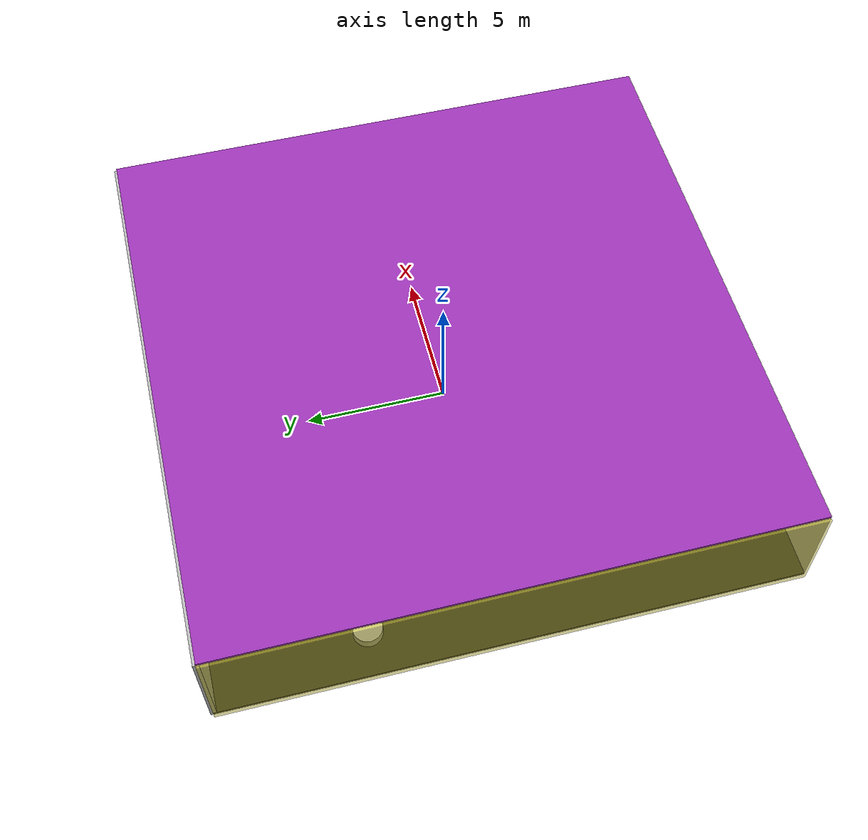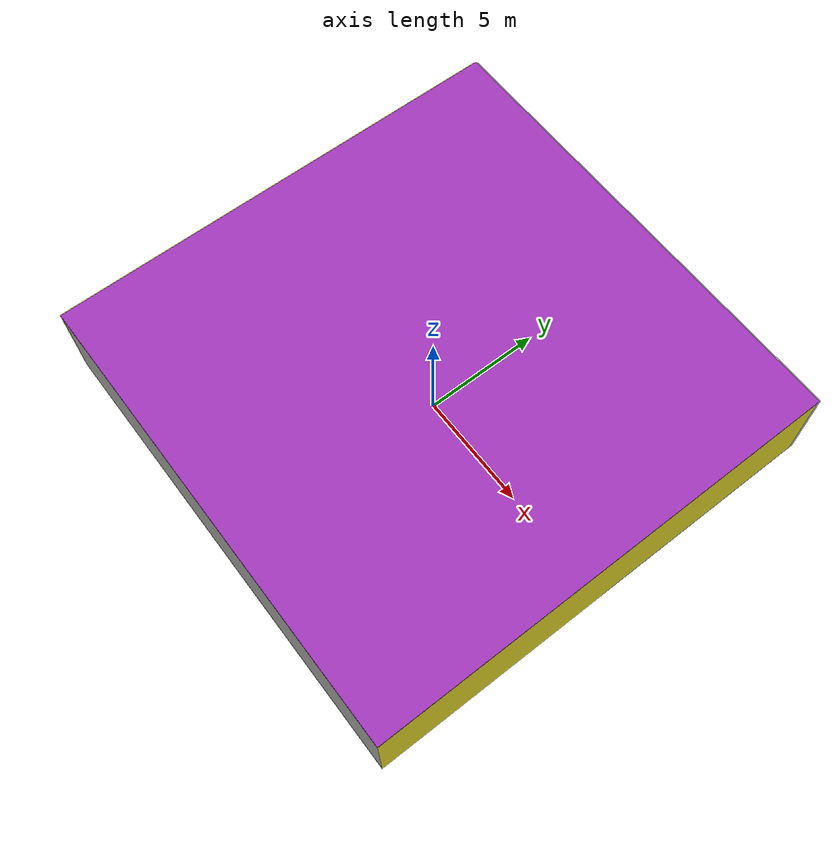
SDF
<sdf version="1.4">
 <world name="default">
  <physics type="ode">
   <max_step_size>0.001</max_step_size>
   <real_time_factor>1</real_time_factor>
   <real_time_update_rate>1000</real_time_update_rate>
   <gravity>0 0 -9.8</gravity>
  </physics>
  <scene><ambient>0.4 0.4 0.4 1</ambient><background>0.7 0.7 0.7 1</background><shadows>1</shadows></scene>
  <model name="Surrounding">
   <static>1</static>
   <link name="Ceiling">
    <collision name="Ceiling_Collision"><geometry><box><size>20 20 0.1</size></box></geometry></collision>
    <visual name="Ceiling_Visual">
     <geometry><box><size>20 20 0.1</size></box></geometry>
     <material>
      <script><uri>file://media/materials/scripts/gazebo.material</uri><name>Gazebo/Purple</name></script>
     </material>
    </visual>
    <pose>0 0 4.05 0 0 0</pose>
   </link>
   <link name="Wall_South">
    <collision name="Wall_South_Collision">
     <geometry><box><size>20 0 4</size></box></geometry>
     <pose>0 0 2 0 -0 0</pose>
    </collision>
    <visual name="Wall_South_Visual">
     <pose>0 0 2 0 -0 0</pose>
     <geometry><box><size>20 0 4</size></box></geometry>
     <material>
      <script><uri>file://media/materials/scripts/gazebo.material</uri><name>Gazebo/CeilingTiled</name></script>
     </material>
    </visual>
    <velocity_decay><linear>0</linear><angular>0</angular></velocity_decay>
    <pose>0 -10 0 0 -0 0</pose>
   </link>
   <link name="Wall_East">
    <collision name="Wall_21_Collision">
     <geometry><box><size>20 0 4</size></box></geometry>
     <pose>0 0 2 0 -0 0</pose>
    </collision>
    <visual name="Wall_21_Visual">
     <pose>0 0 2 0 -0 0</pose>
     <geometry><box><size>20 0 4</size></box></geometry>
     <material>
      <script><uri>file://media/materials/scripts/gazebo.material</uri><name>Gazebo/YellowGlow</name></script>
     </material>
    </visual>
    <velocity_decay><linear>0</linear><angular>0</angular></velocity_decay>
    <pose>10 0 0 0 -0 1.5708</pose>
   </link>
   <link name="Wall_North">
    <collision name="Wall_22_Collision">
     <geometry><box><size>20 0.2 4</size></box></geometry>
     <pose>0 0 2 0 -0 0</pose>
    </collision>
    <visual name="Wall_22_Visual">
     <pose>0 0 2 0 -0 0</pose>
     <geometry><box><size>20 0.2 4</size></box></geometry>
     <material>
      <script><uri>file://media/materials/scripts/gazebo.material</uri><name>Gazebo/JointAnchor</name></script>
     </material>
    </visual>
    <velocity_decay><linear>0</linear><angular>0</angular></velocity_decay>
    <pose>0 10 0 0 -0 0</pose>
   </link>
   <link name="Wall_West">
    <collision name="Wall_23_Collision">
     <geometry><box><size>20 0.2 4</size></box></geometry>
     <pose>0 0 2 0 -0 0</pose>
    </collision>
    <visual name="Wall_23_Visual">
     <pose>0 0 2 0 -0 0</pose>
     <geometry><box><size>20 0.2 4</size></box></geometry>
     <material>
      <script>
       <uri>file://media/materials/scripts/gazebo.material</uri>
       <name>Gazebo/YellowTransparent</name>
      </script>
     </material>
    </visual>
    <velocity_decay><linear>0</linear><angular>0</angular></velocity_decay>
    <pose>-10 0 0 0 0 -1.5708</pose>
   </link>
   <link name="Ground_link">
    <collision name="collision">
     <pose>0 0 .05 0 -0 0</pose>
     <geometry><box><size>20 20 0.1</size></box></geometry>
    </collision>
    <visual name="visual">
     <pose>0 0 .05 0 -0 0</pose>
     <geometry><box><size>20 20 0.1</size></box></geometry>
     <material>
      <script><uri>file://media/materials/scripts/gazebo.material</uri><name>Gazebo/FlatBlack</name></script>
     </material>
    </visual>
   </link>
   <static>1</static>
  </model>
  <spherical_coordinates>
   <surface_model>EARTH_WGS84</surface_model>
   <latitude_deg>0</latitude_deg>
   <longitude_deg>0</longitude_deg>
   <elevation>0</elevation>
   <heading_deg>0</heading_deg>
  </spherical_coordinates>
  <light name="lightball_0" type="diffuse">
   <diffuse>0.8 0.8 0.8 1</diffuse>
   <specular>0.2 0.2 0.2 1</specular>
   <attenuation>
    <range>100</range>
    <constant>0.7</constant>
    <linear>0.01</linear>
    <quadratic>0.001</quadratic>
   </attenuation>
   <direction>-0.5 0.1 -0.9</direction>
   <pose>5.24179677194 9.68957459102 3.84039142176 0 0 0</pose>
  </light>
  <light name="lightball_1" type="diffuse">
   <diffuse>0.8 0.8 0.8 1</diffuse>
   <specular>0.2 0.2 0.2 1</specular>
   <attenuation>
    <range>100</range>
    <constant>0.7</constant>
    <linear>0.01</linear>
    <quadratic>0.001</quadratic>
   </attenuation>
   <direction>-0.5 0.1 -0.9</direction>
   <pose>6.25661490067 3.26236135331 3.61111706352 0 0 0</pose>
  </light>
  <light name="lightball_2" type="diffuse">
   <diffuse>0.8 0.8 0.8 1</diffuse>
   <specular>0.2 0.2 0.2 1</specular>
   <attenuation>
    <range>100</range>
    <constant>0.7</constant>
    <linear>0.01</linear>
    <quadratic>0.001</quadratic>
   </attenuation>
   <direction>-0.5 0.1 -0.9</direction>
   <pose>-1.1549157894 -1.60708555731 1.37902831928 0 0 0</pose>
  </light>
  <light name="lightball_3" type="diffuse">
   <diffuse>0.8 0.8 0.8 1</diffuse>
   <specular>0.2 0.2 0.2 1</specular>
   <attenuation>
    <range>100</range>
    <constant>0.7</constant>
    <linear>0.01</linear>
    <quadratic>0.001</quadratic>
   </attenuation>
   <direction>-0.5 0.1 -0.9</direction>
   <pose>-5.01397449413 5.41537633721 1.66171942621 0 0 0</pose>
  </light>
  <light name="lightball_4" type="diffuse">
   <diffuse>0.8 0.8 0.8 1</diffuse>
   <specular>0.2 0.2 0.2 1</specular>
   <attenuation>
    <range>100</range>
    <constant>0.7</constant>
    <linear>0.01</linear>
    <quadratic>0.001</quadratic>
   </attenuation>
   <direction>-0.5 0.1 -0.9</direction>
   <pose>-4.66726814997 -9.65261182264 2.48706120303 0 0 0</pose>
  </light>
  <light name="lightball_5" type="diffuse">
   <diffuse>0.8 0.8 0.8 1</diffuse>
   <specular>0.2 0.2 0.2 1</specular>
   <attenuation>
    <range>100</range>
    <constant>0.7</constant>
    <linear>0.01</linear>
    <quadratic>0.001</quadratic>
   </attenuation>
   <direction>-0.5 0.1 -0.9</direction>
   <pose>-7.95876379608 7.15551269418 1.86417831462 0 0 0</pose>
  </light>
  <light name="lightball_6" type="diffuse">
   <diffuse>0.8 0.8 0.8 1</diffuse>
   <specular>0.2 0.2 0.2 1</specular>
   <attenuation>
    <range>100</range>
    <constant>0.7</constant>
    <linear>0.01</linear>
    <quadratic>0.001</quadratic>
   </attenuation>
   <direction>-0.5 0.1 -0.9</direction>
   <pose>-5.69178238358 -5.99712260795 1.72371877687 0 0 0</pose>
  </light>
  <light name="lightball_7" type="diffuse">
   <diffuse>0.8 0.8 0.8 1</diffuse>
   <specular>0.2 0.2 0.2 1</specular>
   <attenuation>
    <range>100</range>
    <constant>0.7</constant>
    <linear>0.01</linear>
    <quadratic>0.001</quadratic>
   </attenuation>
   <direction>-0.5 0.1 -0.9</direction>
   <pose>5.069787615 -0.450328949294 2.72522510906 0 0 0</pose>
  </light>
  <light name="lightball_8" type="diffuse">
   <diffuse>0.8 0.8 0.8 1</diffuse>
   <specular>0.2 0.2 0.2 1</specular>
   <attenuation>
    <range>100</range>
    <constant>0.7</constant>
    <linear>0.01</linear>
    <quadratic>0.001</quadratic>
   </attenuation>
   <direction>-0.5 0.1 -0.9</direction>
   <pose>8.1290091041 5.97943128751 3.77145385262 0 0 0</pose>
  </light>
  <light name="lightball_9" type="diffuse">
   <diffuse>0.8 0.8 0.8 1</diffuse>
   <specular>0.2 0.2 0.2 1</specular>
   <attenuation>
    <range>100</range>
    <constant>0.7</constant>
    <linear>0.01</linear>
    <quadratic>0.001</quadratic>
   </attenuation>
   <direction>-0.5 0.1 -0.9</direction>
   <pose>-5.68985276502 6.41486663497 3.13342283853 0 0 0</pose>
  </light>
  <light name="lightball_10" type="diffuse">
   <diffuse>0.8 0.8 0.8 1</diffuse>
   <specular>0.2 0.2 0.2 1</specular>
   <attenuation>
    <range>100</range>
    <constant>0.7</constant>
    <linear>0.01</linear>
    <quadratic>0.001</quadratic>
   </attenuation>
   <direction>-0.5 0.1 -0.9</direction>
   <pose>6.61663082274 -4.11874982708 1.90871032374 0 0 0</pose>
  </light>
  <light name="lightball_11" type="diffuse">
   <diffuse>0.8 0.8 0.8 1</diffuse>
   <specular>0.2 0.2 0.2 1</specular>
   <attenuation>
    <range>100</range>
    <constant>0.7</constant>
    <linear>0.01</linear>
    <quadratic>0.001</quadratic>
   </attenuation>
   <direction>-0.5 0.1 -0.9</direction>
   <pose>9.79781181156 4.04836024335 2.10730241261 0 0 0</pose>
  </light>
  <light name="lightball_12" type="diffuse">
   <diffuse>0.8 0.8 0.8 1</diffuse>
   <specular>0.2 0.2 0.2 1</specular>
   <attenuation>
    <range>100</range>
    <constant>0.7</constant>
    <linear>0.01</linear>
    <quadratic>0.001</quadratic>
   </attenuation>
   <direction>-0.5 0.1 -0.9</direction>
   <pose>1.73020261563 3.70344953226 2.2168680576 0 0 0</pose>
  </light>
  <include>
   <uri>model://textured_shapes</uri>
   <pose>-7.28537525761 5.52503850807 0 0 0 2.17064980006</pose>
  </include>
  <include>
   <uri>model://construction_cone</uri>
   <pose>-0.579728850522 7.47528781803 0 0 0 0.833983524525</pose>
  </include>
  <include>
   <uri>model://construction_cone</uri>
   <pose>2.44030388706 -8.37842286 0 0 0 2.51734038172</pose>
  </include>
 </world>
</sdf>

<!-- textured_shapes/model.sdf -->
<sdf version="1.6">
  <model name="textured_shapes">
    <pose>0 0 0.5 0 0 0</pose>
    <link name="box">
      <pose>0 -1.5 0 0 0 0</pose>
      <collision name="collision">
        <geometry>
          <box>
            <size>1 1 1</size>
          </box>
        </geometry>
      </collision>
      <visual name="visual">
        <geometry>
          <box>
            <size>1 1 1</size>
          </box>
        </geometry>
        <material>
          <script>
            <uri>model://../model_source/models/textured_shapes/materials/scripts</uri>
            <uri>model://../model_source/models/textured_shapes/materials/textures</uri>
            <name>TexturedShape/Squares</name>
          </script>
        </material>
      </visual>
    </link>
    <link name="sphere">
      <collision name="collision">
        <geometry>
          <sphere>
            <radius>0.5</radius>
          </sphere>
        </geometry>
      </collision>
      <visual name="visual">
        <geometry>
          <sphere>
            <radius>0.5</radius>
          </sphere>
        </geometry>
        <material>
          <script>
            <uri>model://../model_source/models/textured_shapes/materials/scripts</uri>
            <uri>model://../model_source/models/textured_shapes/materials/textures</uri>
            <name>TexturedShape/Squares</name>
          </script>
        </material>
      </visual>
    </link>
    <link name="cylinder">
      <pose>0 1.5 0 0 0 0</pose>
      <collision name="collision">
        <geometry>
          <cylinder>
            <radius>0.5</radius>
            <length>1</length>
          </cylinder>
        </geometry>
      </collision>
      <visual name="visual">
        <geometry>
          <cylinder>
            <radius>0.5</radius>
            <length>1</length>
          </cylinder>
        </geometry>
        <material>
          <script>
            <uri>model://../model_source/models/textured_shapes/materials/scripts</uri>
            <uri>model://../model_source/models/textured_shapes/materials/textures</uri>
            <name>TexturedShape/Squares</name>
          </script>
        </material>
      </visual>
    </link>
  </model>
</sdf>

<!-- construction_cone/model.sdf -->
<sdf version="1.5">
  <model name="Construction Cone">
    <link name="link">
      <collision name="collision">
        <geometry>
          <mesh>
            <scale>10 10 10</scale>
            <uri>file://isr-testbed/construction_cone/meshes/construction_cone.dae</uri>
          </mesh>
        </geometry>
      </collision>
      <visual name="visual">
        <geometry>
          <mesh>
            <scale>10 10 10</scale>
            <uri>file://isr-testbed/construction_cone/meshes/construction_cone.dae</uri>
          </mesh>
        </geometry>
      </visual>
    </link>
  </model>
</sdf>
